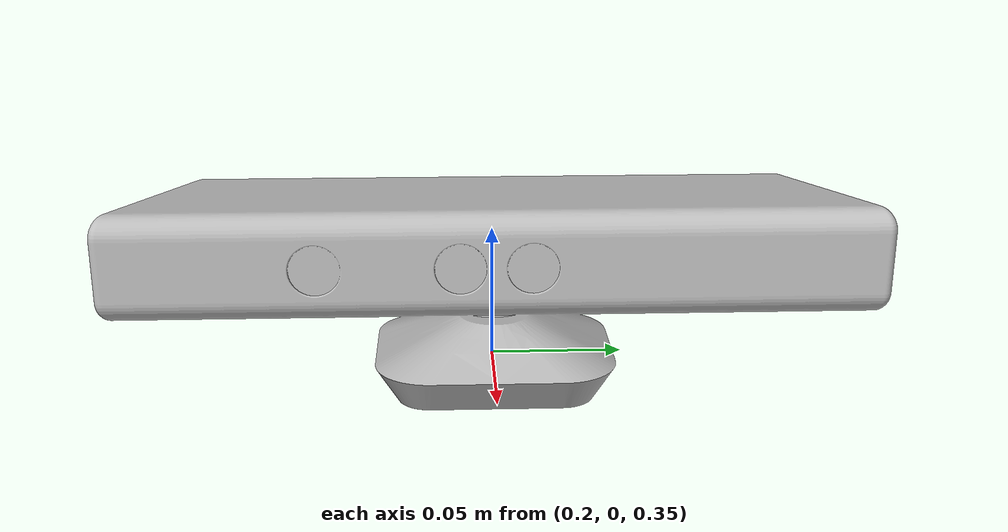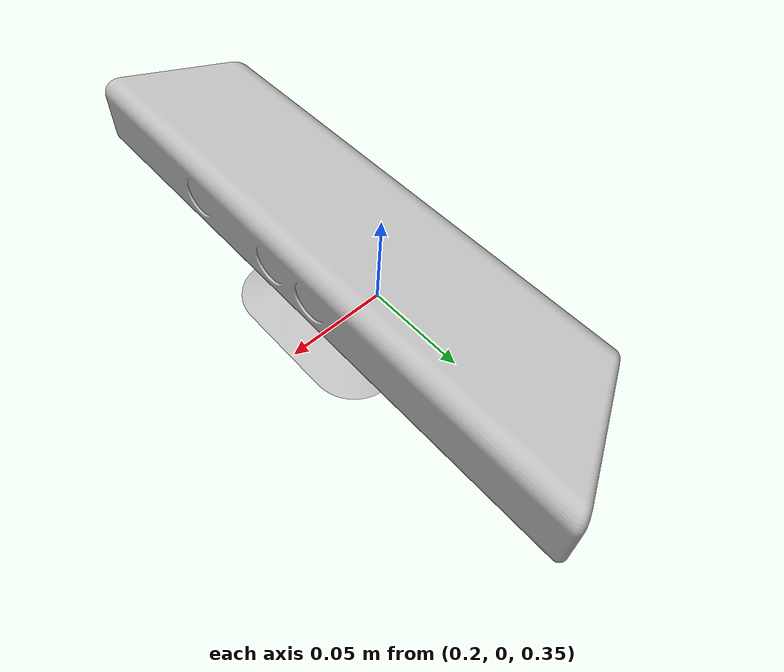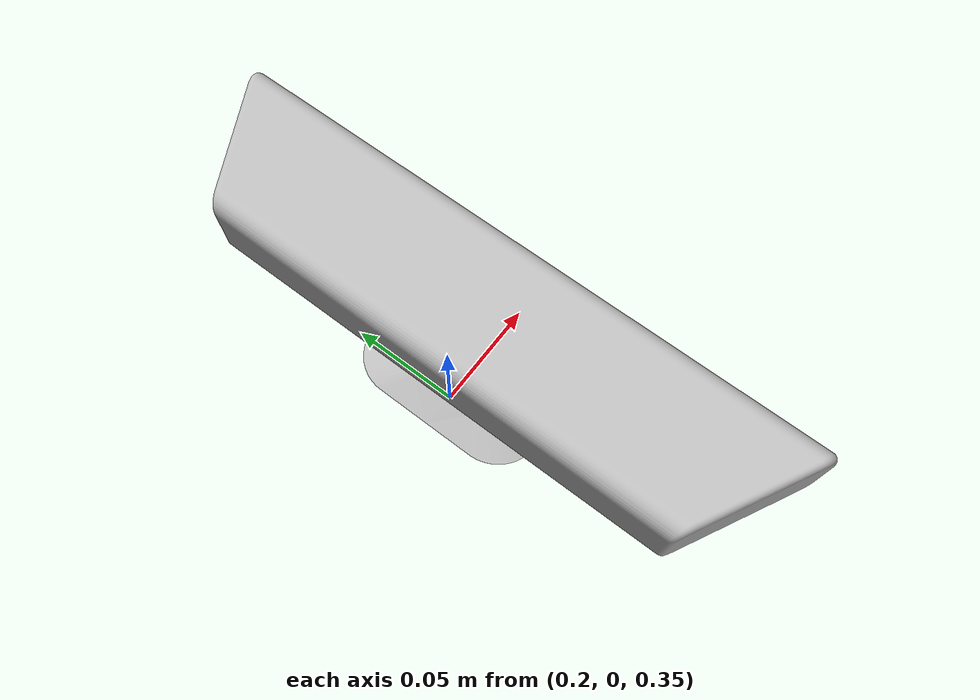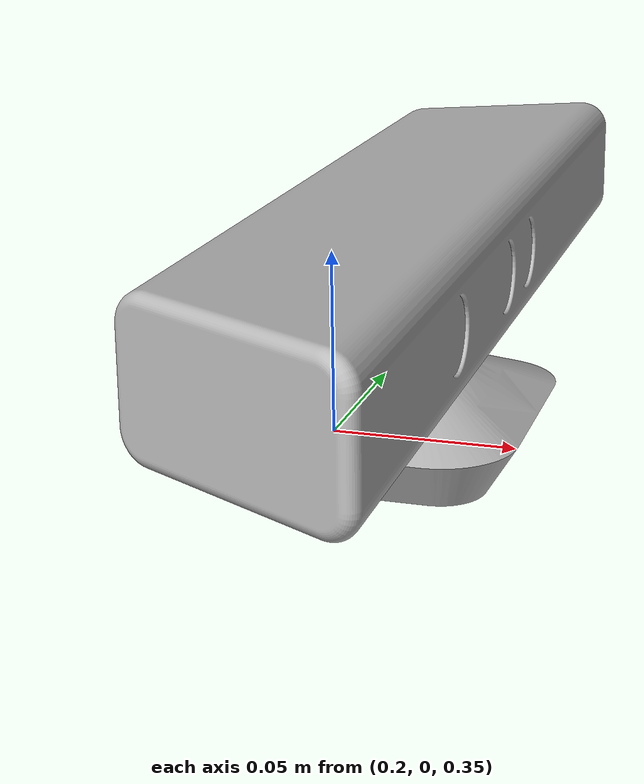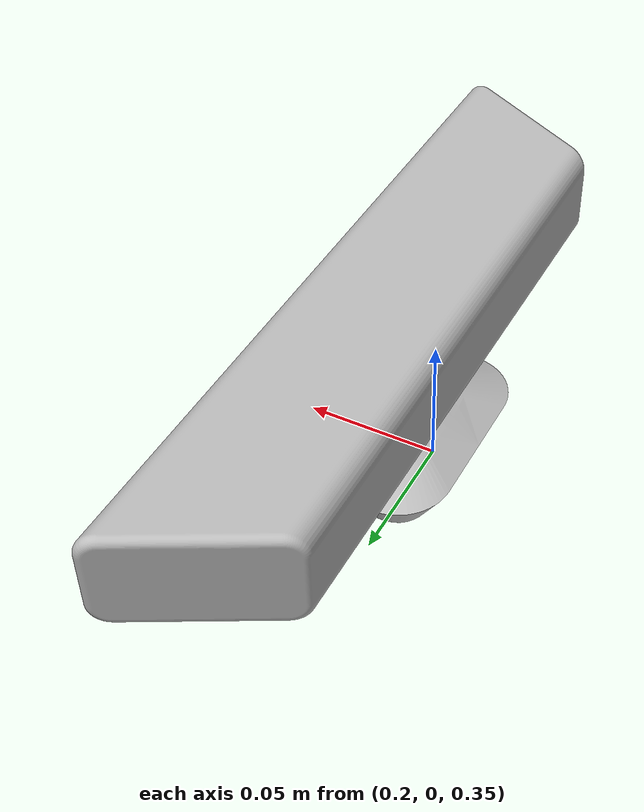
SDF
<?xml version='1.0'?>
<sdf version='1.6'>
  <model name="my_robot">
     <static>false</static>

     <link name="kinect_link">
         <pose frame="kinect_link">0.25 0 0.4 -0 0 0</pose>
         <inertial>
            <mass>0.1</mass>
         </inertial>
         <collision name="collision">
            <geometry>
               <box>
                  <size>0.073000 0.276000 0.072000</size>
               </box>
            </geometry>
         </collision>
         <visual name="visual">
            <geometry>
               <mesh>
                  <uri>model://kinect/meshes/kinect.dae</uri>
               </mesh>
            </geometry>
         </visual>

         <sensor name="camera" type="depth">
            <update_rate>20</update_rate>
            <always_on>1</always_on>
            <visualize>false</visualize>
            <camera>
               <horizontal_fov>1.047198</horizontal_fov>
               <image>
                  <width>800</width>
                  <height>600</height>
                  <format>R8G8B8</format>
               </image>
               <clip>
                  <near>0.05</near>
                  <far>7</far>
               </clip>
            </camera>
            <plugin name="camera_controller" filename="libgazebo_ros_openni_kinect.so">
               <baseline>0.2</baseline>
               <alwaysOn>true</alwaysOn>
               <updateRate>0.0</updateRate>
               <cameraName>camera</cameraName>
               <frameName>kinect_depth_optical_frame</frameName>
               <imageTopicName>rgb/image_raw</imageTopicName>
               <depthImageTopicName>depth/image_raw</depthImageTopicName>
               <pointCloudTopicName>depth/points</pointCloudTopicName>
               <cameraInfoTopicName>rgb/camera_info</cameraInfoTopicName>
               <depthImageCameraInfoTopicName>depth/camera_info</depthImageCameraInfoTopicName>
               <pointCloudCutoff>0.01</pointCloudCutoff>
	       <pointCloudCutoffMax>5.0</pointCloudCutoffMax>
               <hackBaseline>0.0</hackBaseline>
               <distortionK1>0.0</distortionK1>
               <distortionK2>0.0</distortionK2>
               <distortionK3>0.0</distortionK3>
               <distortionT1>0.0</distortionT1>
               <distortionT2>0.0</distortionT2>
               <CxPrime>0.0</CxPrime>
               <Cx>0.0</Cx>
               <Cy>0.0</Cy>
               <focalLength>0.0</focalLength>
            </plugin>
         </sensor>
      </link>
      <joint type="fixed" name="kinect_joint">
         <pose>0.15 0 0.4 0 0 0</pose>
         <child>kinect_link</child>
         <parent>chassis</parent>
         <axis>
            <xyz> 1 0</xyz>
         </axis>
      </joint>

  <joint name="kinect_depth_optical_joint" type="fixed">
    <pose>"0 0 3 0 0 0"</pose>
    <parent> kinect_link </parent>
    <child> kinect_depth_optical_frame</child>
         <axis>
            <xyz>0 1 0</xyz>
         </axis>
  </joint>

<link name="kinect_depth_optical_frame">
         <pose frame="">0.25 0 0.4 -0 -0 0</pose>
         <inertial>
            <mass>0.1</mass>
         </inertial>
</link>

   </model>

</sdf>
